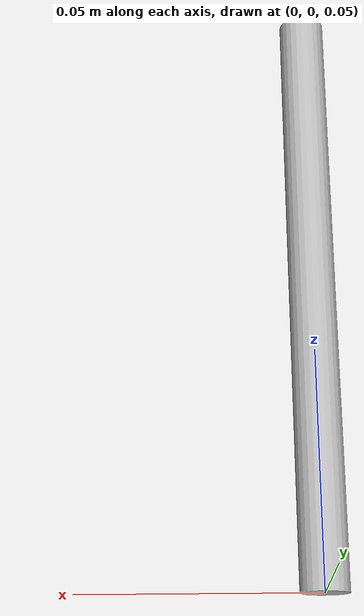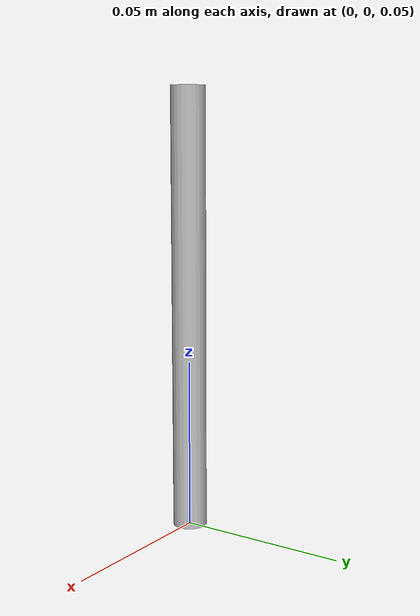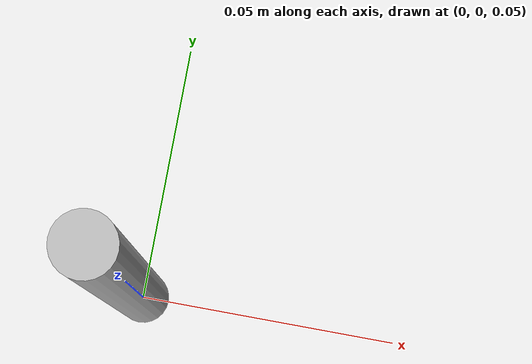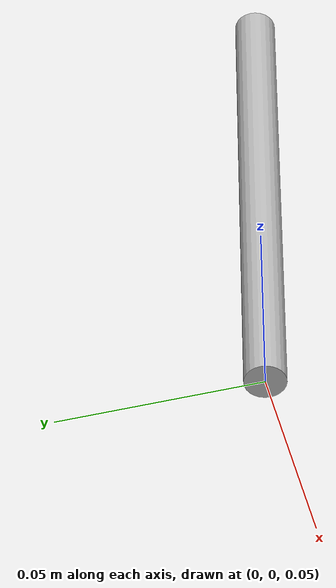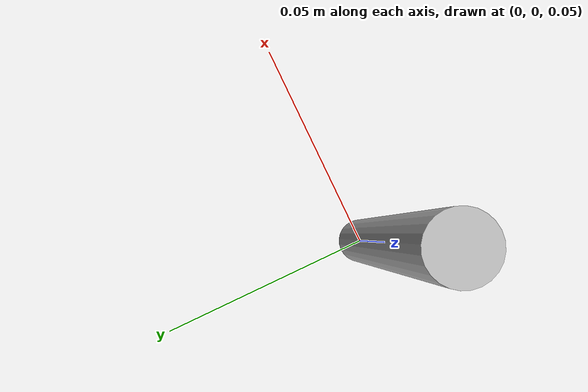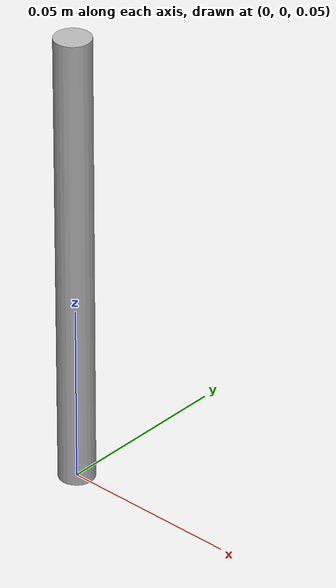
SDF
<?xml version="1.0" ?>
<sdf version="1.5">
  <model name="blue pen">
    <link name="link">
      <pose>0 0 0.115 0 0 0</pose>
      <inertial>
        <mass>0.05</mass>
        <inertia>
          <ixx>0.00058</ixx>
          <ixy>0</ixy>
          <ixz>0</ixz>
          <iyy>0.00058</iyy>
          <iyz>0</iyz>
          <izz>0.00019</izz>
        </inertia>
      </inertial>
      <collision name="collision">
        <geometry>
          <cylinder>
            <radius>0.005000</radius>
            <length>0.130000</length>
          </cylinder>
        </geometry>
      </collision>
      <visual name="visual">
        <geometry>
          <cylinder>
            <radius>0.005000</radius>
            <length>0.130000</length>
          </cylinder>
        </geometry>
        <material>
          <script>
            <uri>model://blue_pen/materials/scripts</uri>
            <uri>model://blue_pen/materials/textures</uri>
            <name>Pen/Diffuse</name>
          </script>
        </material>
      </visual>
    </link>
  </model>
</sdf>
